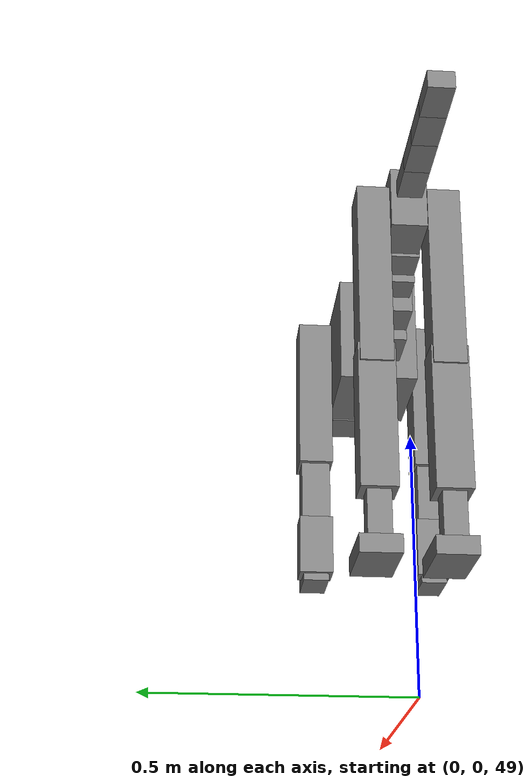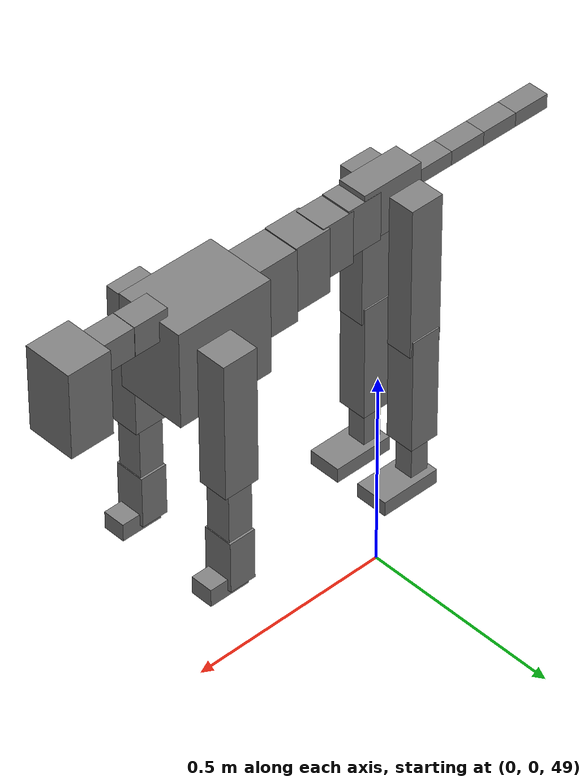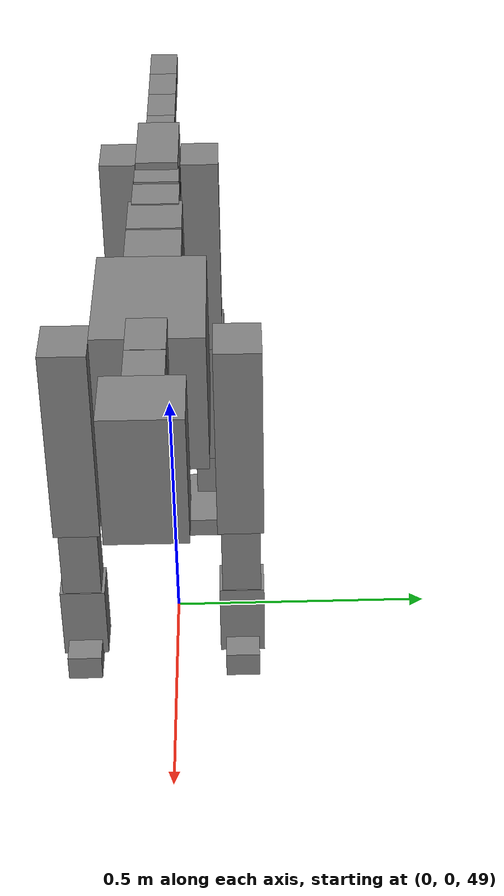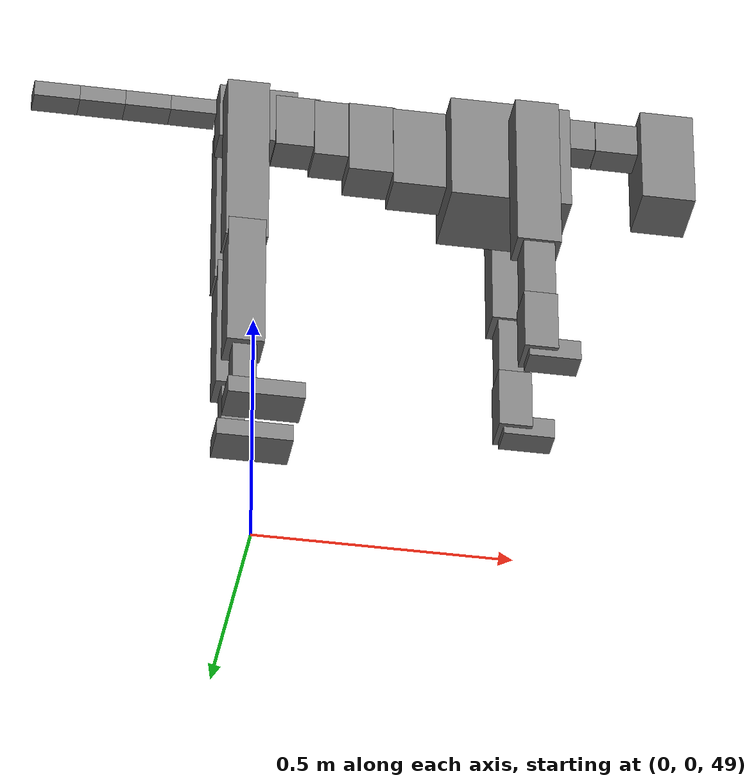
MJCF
<mujoco model="dog">

    <default>
        <joint armature="0.02" stiffness="1" damping="0.2" limited="true"/>
        <geom condim="3" friction="1 0.05 0.05" margin="0.01"/>
        <motor ctrllimited="true" ctrlrange="-1.0 1.0" forcelimited="true" gear="50"/>
    </default>

    <compiler inertiafromgeom="true" angle="radian"/>

    <option timestep="0.016" iterations="50" tolerance="1e-10" solver="Newton" jacobian="dense" cone="pyramidal"/>

    <size nconmax="20000" njmax="60000" nstack="5000000"/>
    <visual>
        <map force="0.1" zfar="30"/>
        <rgba haze="0.15 0.25 0.35 1"/>
        <quality shadowsize="2048"/>
        <global offwidth="800" offheight="800"/>
    </visual>

    <asset>
        <texture type="skybox" builtin="gradient" rgb1="0.3 0.5 0.7" rgb2="0 0 0" width="512" height="512"/>
        <texture name="texplane" type="2d" builtin="checker" rgb1=".2 .3 .4" rgb2=".1 0.15 0.2" width="512" height="512"
                 mark="cross" markrgb=".8 .8 .8"/>
        <texture name="texgeom" type="cube" builtin="flat" mark="cross" width="127" height="1278" rgb1="0.8 0.6 0.4"
                 rgb2="0.8 0.6 0.4" markrgb="1 1 1" random="0.01"/>

        <material name="matplane" reflectance="0.3" texture="texplane" texrepeat="1 1" texuniform="true"/>
        <material name="matgeom" texture="texgeom" texuniform="true" rgba="0.8 0.6 .4 1"/>
    </asset>

    <worldbody>
        <geom name="floor" pos="0 0 0" size="0 0 .25" type="plane" material="matplane" condim="3"/>

        <light directional="false" diffuse=".2 .2 .2" specular="0 0 0" pos="0 0 5" dir="0 0 -1" castshadow="false"/>
        <light mode="targetbodycom" target="torso" directional="false" diffuse=".8 .8 .8" specular="0.3 0.3 0.3"
               pos="0 0 4.0" dir="0 0 -1"/>

        <body name="root" pos="0 0 50">
            <freejoint name="root_1"/>
            <geom type="box" pos="0 0 -0.02" size="0.0774  0.0358  0.063" density="2030"/>

            <body name="spine1" pos="0.054 0 0">
                <joint name="spine1_y" axis="0 1 0" range="0 0.7" limited="true"/>
                <geom type="box" pos="0.02375 0 -0.03" size="0.04375  0.0375  0.05985" density="2030"/>

                <body name="spine2" pos="0.0612 0 0">
                    <joint name="spine2_y" axis="0 1 0" range="-0.15 0.15" limited="true"/>
                    <geom type="box" pos="0.03555  0  -0.04" size="0.04055  0.039  0.06615" density="2030"/>

                    <body name="spine3" pos="0.0730 0 0">
                        <joint name="spine3_y" axis="0 1 0" range="-0.15 0.15" limited="true"/>
                        <geom type="box" pos="0.03555  0  -0.057" size="0.04555  0.0445  0.081" density="2030"/>

                        <body name="spine4" pos="0.0780 0 0">
                            <joint name="spine4_y" axis="0 1 0" range="-0.15 0.15" limited="true"/>
                            <geom type="box" pos="0.05265  0  -0.07" size="0.05265  0.045  0.09135" density="2030"/>

                            <body name="torso" pos="0.1082 0 0">
                                <joint name="torso_y" axis="0 1 0" range="-0.15 0.15" limited="true"/>
                                <geom type="box" pos="0.11925  0  -0.085" size="0.11925  0.085  0.11745"
                                      density="2030"/>

                                <body name="neck1" pos="0.2160  0   0.0180">
                                    <joint name="neck1_y" axis="0 1 0" range="-1.2  -1" limited="true"/>
                                    <geom type="box" pos="0.0423  0  0" size="0.0423  0.03  0.036" density="2325"/>

                                    <body name="neck2" pos="0.0853  0  0">
                                        <joint name="neck2_y" axis="0 1 0" range="0.1  0" limited="true"/>
                                        <geom type="box" pos="0.0423  0  0" size="0.0423  0.03  0.036" density="2325"/>

                                        <body name="head" pos="0.0853  0  0">
                                            <joint name="head_y" axis="0 1 0" range="-0.3  -0.2" limited="true"/>
                                            <geom type="box" pos="0.0531  0  -0.055" size="0.0531  0.06  0.1044"
                                                  density="4030"/>

                                        </body>
                                    </body>
                                </body>

                                <body name="front_shoulder" pos="0.156  0   -0.0480">
                                    <joint name="front_shoulder_y" axis="0 1 0" range="-1 1.5" limited="true"/>
                                    <geom type="box" pos="0 0.13 -0.1431" size="0.0433  0.0370  0.1697" density="1158"/>
                                    <geom type="box" pos="0 -0.13 -0.1431" size="0.0433  0.0370  0.1697"
                                          density="1158"/>

                                    <body name="front_elbow" pos="0  0  -0.2861">
                                        <joint name="front_elbow_y" axis="0 1 0" range="-2 0" limited="true"/>
                                        <geom type="box" pos="0 0.13 -0.0830" size="0.0307  0.0313  0.0830"
                                              density="1081"/>
                                        <geom type="box" pos="0 -0.13 -0.0830" size="0.0307  0.0313  0.0830"
                                              density="1081"/>

                                        <body name="front_wrist" pos="0  0  -0.1660">
                                            <joint name="front_wrist_y" axis="0 1 0" range="-0.2 0" limited="true"/>
                                            <geom type="box" pos="0 0.13 -0.0511" size="0.0327  0.0364  0.0643"
                                                  density="1664"/>
                                            <geom type="box" pos="0 -0.13 -0.0511" size="0.0327  0.0364  0.0643"
                                                  density="1664"/>

                                            <body name="front_finger_end" pos="0  0  -0.1023">
                                                <joint name="front_finger_y" axis="0 1 0" range="-0.4 1"
                                                       limited="true"/>
                                                <geom type="box" pos="0.0275  0.13  -0.0068"
                                                      size="0.0504  0.0275  0.0218" density="1515"/>
                                                <geom type="box" pos="0.0275  -0.13  -0.0068"
                                                      size="0.0504  0.0275  0.0218" density="1515"/>

                                            </body>

                                        </body>
                                    </body>
                                </body>

                            </body>
                        </body>
                    </body>
                </body>
            </body>

            <body name="back_hip" pos="-0.03 0 -0.018">
                <joint name="back_hip_y" axis="0 1 0" range="-1.5 0.3" limited="true"/>
                <geom type="box" pos="0 0.07 -0.1664" size="0.0414  0.0325  0.1892" density="1154"/>
                <geom type="box" pos="0 -0.07 -0.1664" size="0.0414  0.0325  0.1892" density="1154"/>

                <body name="back_knee" pos="0  0  -0.3327">
                    <joint name="back_knee_y" axis="0 1 0" range="0 2.8" limited="true"/>
                    <geom type="box" pos="0 0.07 -0.1298" size="0.0365  0.0360  0.1453" density="1227"/>
                    <geom type="box" pos="0 -0.07 -0.1298" size="0.0365  0.0360  0.1453" density="1227"/>

                    <body name="back_ankle" pos="0  0  -0.2596">
                        <joint name="back_ankle_y" axis="0 1 0" range="-2.2 0" limited="true"/>
                        <geom type="box" pos="0 0.07 -0.0602" size="0.0231  0.0231  0.0715" density="1284"/>
                        <geom type="box" pos="0 -0.07 -0.0602" size="0.0231  0.0231  0.0715" density="1284"/>

                        <body name="back_toe_end" pos="0  0  -0.1205">
                            <joint name="back_toe_y" axis="0 1 0" range="-0.4 1" limited="true"/>
                            <geom type="box" pos="0.0405  0.07  -0.0033" size="0.0742  0.0405  0.0183" density="1515"/>
                            <geom type="box" pos="0.0405  -0.07  -0.0033" size="0.0742  0.0405  0.0183" density="1515"/>

                        </body>
                    </body>
                </body>
            </body>

            <body name="tail1" pos="-0.074 0 -0.006">
                <joint name="tail1_y" axis="0 1 0" range="-0.2 0.2" limited="true"/>
                <geom type="box" pos="-0.0536  0  0" size="0.045  0.025  0.0175" density="1587"/>

                <body name="tail2" pos="-0.09 0 0">
                    <joint name="tail2_y" axis="0 1 0" range="-0.2 0.2" limited="true"/>
                    <geom type="box" pos="-0.0536  0  0" size="0.045  0.025  0.0175" density="1587"/>

                    <body name="tail3" pos="-0.09 0 0">
                        <joint name="tail3_y" axis="0 1 0" range="-0.2 0.2" limited="true"/>
                        <geom type="box" pos="-0.0536  0  0" size="0.045  0.025  0.0175" density="1587"/>

                        <body name="tail4" pos="-0.09 0 0">
                            <joint name="tail4_y" axis="0 1 0" range="-0.2 0.2" limited="true"/>
                            <geom type="box" pos="-0.0536  0  0" size="0.045  0.025  0.0175" density="1587"/>

                        </body>
                    </body>
                </body>
            </body>
        </body>
    </worldbody>

    <actuator>
        <motor joint="spine1_y" forcerange="-150 150     "/>
        <motor joint="spine2_y" forcerange="-150 150     "/>
        <motor joint="spine3_y" forcerange="-150 150     "/>
        <motor joint="spine4_y" forcerange="-150 150     "/>
        <motor joint="torso_y" forcerange="-150 150     "/>
        <motor joint="neck1_y" forcerange="-100 100       "/>
        <motor joint="neck2_y" forcerange="-100 100       "/>
        <motor joint="head_y" forcerange="-150 150       "/>
        <motor joint="front_shoulder_y" forcerange="-196.05 150.79"/>
        <motor joint="front_elbow_y" forcerange="-170.02 157.95"/>
        <motor joint="front_wrist_y" forcerange="-144.41 146.44"/>
        <motor joint="front_finger_y" forcerange="-66.47 40.17"/>
        <motor joint="back_hip_y" forcerange="-382.14 251.01"/>
        <motor joint="back_knee_y" forcerange="-323.47 399.48"/>
        <motor joint="back_angle_y" forcerange="-109.47 160.57"/>
        <motor joint="back_toe_y" forcerange="-114.95 128.99"/>
        <motor joint="tail1_y" forcerange="-50 50     "/>
        <motor joint="tail2_y" forcerange="-50 50     "/>
        <motor joint="tail3_y" forcerange="-50 50     "/>
        <motor joint="tail4_y" forcerange="-50 50     "/>
    </actuator>
</mujoco>
